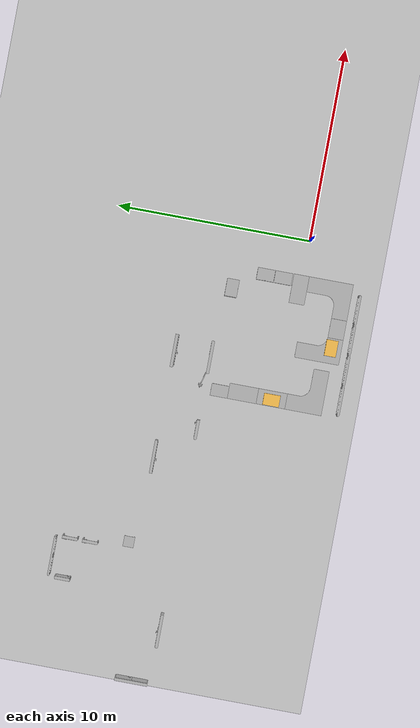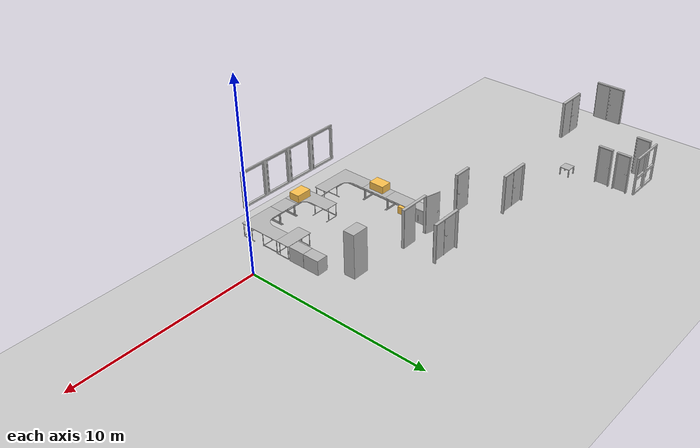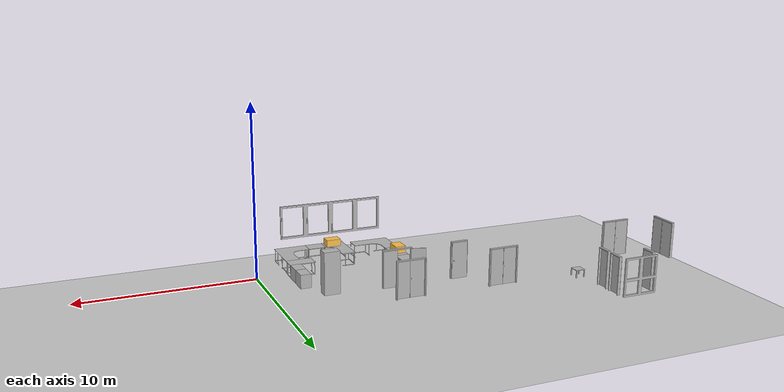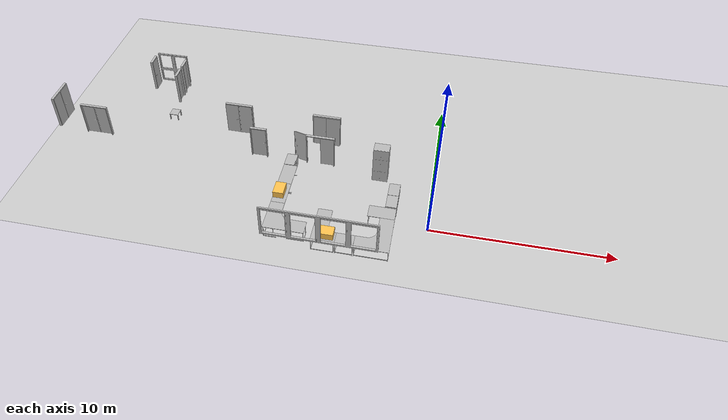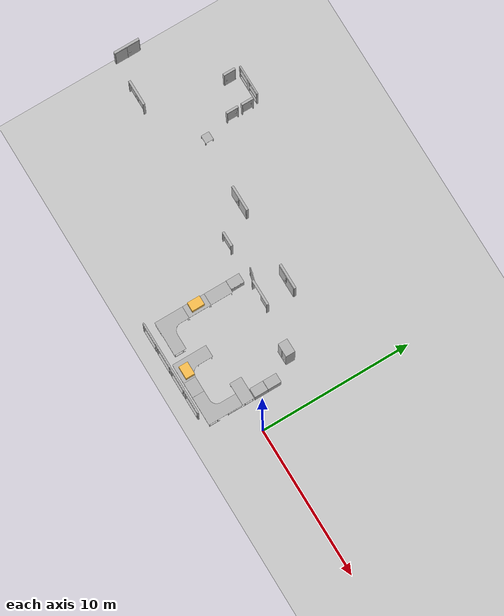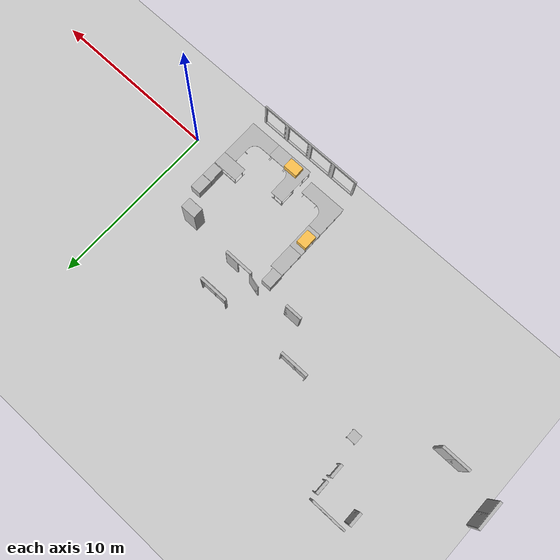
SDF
<sdf version="1.7">
 <world name="default">
  <model name="podlaha">
   <static>1</static>
   <link name="link">
    <collision name="collision">
     <geometry><plane><normal>0 0 1</normal><size>45 21</size></plane></geometry>
     <surface><friction><ode><mu>100</mu><mu2>50</mu2></ode></friction></surface>
    </collision>
    <visual name="visual">
     <cast_shadows>0</cast_shadows>
     <geometry><plane><normal>0 0 1</normal><size>45 21</size></plane></geometry>
     <material>
      <script>
       <uri>model://my_ground_plane/materials/scripts</uri>
       <uri>model://my_ground_plane/materials/textures/</uri>
       <name>MyGroundPlane/Image</name>
      </script>
     </material>
    </visual>
    <velocity_decay><linear>0</linear><angular>0</angular></velocity_decay>
   </link>
   <pose>-1.5 6.5 0 0 -0 0</pose>
  </model>
  <model name="futra_mistnost3">
   <pose>-6.795 3.93 0 0 -0 0</pose>
   <static>1</static>
   <link name="futra_160_collision">
    <collision name="futra_160_collision">
     <geometry><mesh><uri>model://futra_160/meshes/model.dae</uri></mesh></geometry>
    </collision>
    <visual name="futra_160">
     <cast_shadows>0</cast_shadows>
     <geometry><mesh><uri>model://futra_160/meshes/model.dae</uri></mesh></geometry>
     <material>
      <script>
       <uri>model://futra_160/material/scripts</uri>
       <uri>model://futra_160/material/textures</uri>
       <name>futra_160/Diffuse</name>
      </script>
     </material>
    </visual>
   </link>
  </model>
  <model name="dvere_sklikou_mistnost3">
   <pose>-8.00018 4.11255 0 0 -0 2.8828</pose>
   <static>1</static>
   <link name="dvere_80_sklikou_collision">
    <collision name="dvere_80_sklikou_collision">
     <geometry><mesh><uri>model://dvere_80_sklikou/meshes/model.dae</uri></mesh></geometry>
    </collision>
    <visual name="dvere_80_sklikou">
     <cast_shadows>0</cast_shadows>
     <geometry><mesh><uri>model://dvere_80_sklikou/meshes/model.dae</uri></mesh></geometry>
     <material>
      <script>
       <uri>model://dvere_80_sklikou/material/scripts</uri>
       <uri>model://dvere_80_sklikou/material/textures</uri>
       <name>dvere_80_sklikou/Diffuse</name>
      </script>
     </material>
    </visual>
   </link>
  </model>
  <model name="dvere_bezkliky_mistnost3">
   <pose>-6.38 3.99 0 0 -0 0</pose>
   <static>1</static>
   <link name="dvere_80_bezkliky_collision">
    <collision name="dvere_80_bezkliky_collision">
     <geometry><mesh><uri>model://dvere_80_bezkliky/meshes/model.dae</uri></mesh></geometry>
    </collision>
    <visual name="dvere_80_bezkliky">
     <cast_shadows>0</cast_shadows>
     <geometry><mesh><uri>model://dvere_80_bezkliky/meshes/model.dae</uri></mesh></geometry>
     <material>
      <script>
       <uri>model://dvere_80_bezkliky/material/scripts</uri>
       <uri>model://dvere_80_bezkliky/material/textures</uri>
       <name>dvere_80_bezkliky/Diffuse</name>
      </script>
     </material>
    </visual>
   </link>
  </model>
  <model name="skrin_90_low_mistnost3_1">
   <pose>-8.4 3.15 0 0 -0 1.57</pose>
   <static>1</static>
   <link name="skrin_90_low_collision">
    <collision name="skrin_90_low_collision">
     <geometry><mesh><uri>model://skrin_90_low/meshes/model.dae</uri></mesh></geometry>
    </collision>
    <visual name="skrin_90_low">
     <cast_shadows>0</cast_shadows>
     <geometry><mesh><uri>model://skrin_90_low/meshes/model.dae</uri></mesh></geometry>
     <material>
      <script>
       <uri>model://skrin_90_low/material/scripts</uri>
       <uri>model://skrin_90_low/material/textures</uri>
       <name>skrin_90_low/Diffuse</name>
      </script>
     </material>
    </visual>
   </link>
  </model>
  <model name="stul_150_mistnost3_1">
   <pose>-8.31 1.95 0 0 -0 1.57</pose>
   <static>1</static>
   <link name="stul_150_collision">
    <collision name="stul_150_collision">
     <geometry><mesh><uri>model://stul_150/meshes/model.dae</uri></mesh></geometry>
    </collision>
    <visual name="stul_150_mesh">
     <cast_shadows>0</cast_shadows>
     <geometry><mesh><uri>model://stul_150/meshes/model.dae</uri></mesh></geometry>
     <material>
      <script>
       <uri>model://stul_150/material/scripts</uri>
       <uri>model://stul_150/material/textures</uri>
       <name>stul_150/Diffuse</name>
      </script>
     </material>
    </visual>
   </link>
  </model>
  <model name="stul_150_mistnost3_2">
   <pose>-8.31 0.45 0 0 -0 1.57</pose>
   <static>1</static>
   <link name="stul_150_collision">
    <collision name="stul_150_collision">
     <geometry><mesh><uri>model://stul_150/meshes/model.dae</uri></mesh></geometry>
    </collision>
    <visual name="stul_150_mesh">
     <cast_shadows>0</cast_shadows>
     <geometry><mesh><uri>model://stul_150/meshes/model.dae</uri></mesh></geometry>
     <material>
      <script>
       <uri>model://stul_150/material/scripts</uri>
       <uri>model://stul_150/material/textures</uri>
       <name>stul_150/Diffuse</name>
      </script>
     </material>
    </visual>
   </link>
  </model>
  <model name="stul_l_levy_mistnost3_1">
   <pose>-5.35 -1.45 0 0 0 -1.57</pose>
   <static>1</static>
   <link name="stul_l_levy_collision">
    <collision name="stul_l_levy_collision">
     <geometry><mesh><uri>model://stul_l_levy/meshes/model.dae</uri></mesh></geometry>
    </collision>
    <visual name="stul_l_levy_mesh">
     <cast_shadows>0</cast_shadows>
     <geometry><mesh><uri>model://stul_l_levy/meshes/model.dae</uri></mesh></geometry>
     <material>
      <script>
       <uri>model://stul_l_levy/material/scripts</uri>
       <uri>model://stul_l_levy/material/textures</uri>
       <name>stul_l_levy/Diffuse</name>
      </script>
     </material>
    </visual>
   </link>
  </model>
  <model name="stul_v_mistnost3_1">
   <pose>-6.41 -0.9 0 0 -0 3.14</pose>
   <static>1</static>
   <link name="stul_v_collision">
    <collision name="stul_v_collision">
     <geometry><mesh><uri>model://stul_v/meshes/model.dae</uri></mesh></geometry>
    </collision>
    <visual name="stul_v_mesh">
     <cast_shadows>0</cast_shadows>
     <geometry><mesh><uri>model://stul_v/meshes/model.dae</uri></mesh></geometry>
     <material>
      <script>
       <uri>model://stul_v/material/scripts</uri>
       <uri>model://stul_v/material/textures</uri>
       <name>stul_v/Diffuse</name>
      </script>
     </material>
    </visual>
   </link>
  </model>
  <model name="stul_100_mistnost3_1">
   <pose>-4.2 -2.2 0 0 -0 3.14</pose>
   <static>1</static>
   <link name="stul_100_collision">
    <collision name="stul_100_collision">
     <geometry><mesh><uri>model://stul_100/meshes/model.dae</uri></mesh></geometry>
    </collision>
    <visual name="stul_100_mesh">
     <cast_shadows>0</cast_shadows>
     <geometry><mesh><uri>model://stul_100/meshes/model.dae</uri></mesh></geometry>
     <material>
      <script>
       <uri>model://stul_100/material/scripts</uri>
       <uri>model://stul_100/material/textures</uri>
       <name>stul_100/Diffuse</name>
      </script>
     </material>
    </visual>
   </link>
  </model>
  <model name="stul_v_mistnost3_2">
   <pose>-3.1 -0.3 0 0 0 -1.57</pose>
   <static>1</static>
   <link name="stul_v_collision">
    <collision name="stul_v_collision">
     <geometry><mesh><uri>model://stul_v/meshes/model.dae</uri></mesh></geometry>
    </collision>
    <visual name="stul_v_mesh">
     <cast_shadows>0</cast_shadows>
     <geometry><mesh><uri>model://stul_v/meshes/model.dae</uri></mesh></geometry>
     <material>
      <script>
       <uri>model://stul_v/material/scripts</uri>
       <uri>model://stul_v/material/textures</uri>
       <name>stul_v/Diffuse</name>
      </script>
     </material>
    </visual>
   </link>
  </model>
  <model name="stul_150_mistnost3_3">
   <pose>-2.55 0.1 0 0 -0 0</pose>
   <static>1</static>
   <link name="stul_150_collision">
    <collision name="stul_150_collision">
     <geometry><mesh><uri>model://stul_150/meshes/model.dae</uri></mesh></geometry>
    </collision>
    <visual name="stul_150_mesh">
     <cast_shadows>0</cast_shadows>
     <geometry><mesh><uri>model://stul_150/meshes/model.dae</uri></mesh></geometry>
     <material>
      <script>
       <uri>model://stul_150/material/scripts</uri>
       <uri>model://stul_150/material/textures</uri>
       <name>stul_150/Diffuse</name>
      </script>
     </material>
    </visual>
   </link>
  </model>
  <model name="skrin_90_low_mistnost3_2">
   <pose>-2.12 1 0 0 0 -1.57</pose>
   <static>1</static>
   <link name="skrin_90_low_collision">
    <collision name="skrin_90_low_collision">
     <geometry><mesh><uri>model://skrin_90_low/meshes/model.dae</uri></mesh></geometry>
    </collision>
    <visual name="skrin_90_low">
     <cast_shadows>0</cast_shadows>
     <geometry><mesh><uri>model://skrin_90_low/meshes/model.dae</uri></mesh></geometry>
     <material>
      <script>
       <uri>model://skrin_90_low/material/scripts</uri>
       <uri>model://skrin_90_low/material/textures</uri>
       <name>skrin_90_low/Diffuse</name>
      </script>
     </material>
    </visual>
   </link>
  </model>
  <model name="skrin_90_low_mistnost3_3">
   <pose>-2.12 1.91 0 0 0 -1.57</pose>
   <static>1</static>
   <link name="skrin_90_low_collision">
    <collision name="skrin_90_low_collision">
     <geometry><mesh><uri>model://skrin_90_low/meshes/model.dae</uri></mesh></geometry>
    </collision>
    <visual name="skrin_90_low">
     <cast_shadows>0</cast_shadows>
     <geometry><mesh><uri>model://skrin_90_low/meshes/model.dae</uri></mesh></geometry>
     <material>
      <script>
       <uri>model://skrin_90_low/material/scripts</uri>
       <uri>model://skrin_90_low/material/textures</uri>
       <name>skrin_90_low/Diffuse</name>
      </script>
     </material>
    </visual>
   </link>
  </model>
  <model name="skrin_90_mistnost3_1">
   <pose>-3.12 3.5 0 0 -0 0</pose>
   <static>1</static>
   <link name="skrin_90_collision">
    <collision name="skrin_90_collision">
     <geometry><mesh><uri>model://skrin_90/meshes/model.dae</uri></mesh></geometry>
    </collision>
    <visual name="skrin_90">
     <cast_shadows>0</cast_shadows>
     <geometry><mesh><uri>model://skrin_90/meshes/model.dae</uri></mesh></geometry>
     <material>
      <script>
       <uri>model://skrin_90/material/scripts</uri>
       <uri>model://skrin_90/material/textures</uri>
       <name>skrin_90/Diffuse</name>
      </script>
     </material>
    </visual>
   </link>
  </model>
  <model name="okna_mistnost3">
   <pose>-8.57 -3.01 1.18 0 -0 0</pose>
   <static>1</static>
   <link name="okna_collision">
    <collision name="okna_collision">
     <geometry><mesh><uri>model://okna/meshes/model.dae</uri></mesh></geometry>
    </collision>
    <visual name="okna_mesh">
     <cast_shadows>0</cast_shadows>
     <geometry><mesh><uri>model://okna/meshes/model.dae</uri></mesh></geometry>
     <material>
      <script>
       <uri>model://okna/material/scripts</uri>
       <uri>model://okna/material/textures</uri>
       <name>okna/Diffuse</name>
      </script>
     </material>
    </visual>
   </link>
  </model>
  <model name="vchodove_dvere_chodba_2">
   <pose>-19.2306 9.97144 0 0 -0 0</pose>
   <static>1</static>
   <link name="dvere_vchodove_2_collision">
    <collision name="dvere_vchodove_2_collision">
     <geometry><mesh><uri>model://dvere_vchodove_2/meshes/model.dae</uri><scale>0.9 1 1</scale></mesh></geometry>
    </collision>
    <visual name="dvere_vchodove_2_mesh">
     <cast_shadows>0</cast_shadows>
     <geometry><mesh><uri>model://dvere_vchodove_2/meshes/model.dae</uri><scale>0.9 1 1</scale></mesh></geometry>
     <material>
      <script>
       <uri>model://dvere_vchodove_2/material/scripts</uri>
       <uri>model://dvere_vchodove_2/material/textures</uri>
       <name>dvere_vchodove_2/Diffuse</name>
      </script>
     </material>
    </visual>
   </link>
  </model>
  <model name="futra_chodba_1">
   <pose>-21 3.93 0 0 -0 0</pose>
   <static>1</static>
   <link name="futra_160_collision">
    <collision name="futra_160_collision">
     <geometry><mesh><uri>model://futra_160/meshes/model.dae</uri></mesh></geometry>
    </collision>
    <visual name="futra_160">
     <cast_shadows>0</cast_shadows>
     <geometry><mesh><uri>model://futra_160/meshes/model.dae</uri></mesh></geometry>
     <material>
      <script>
       <uri>model://futra_160/material/scripts</uri>
       <uri>model://futra_160/material/textures</uri>
       <name>futra_160/Diffuse</name>
      </script>
     </material>
    </visual>
   </link>
  </model>
  <model name="dvere_sklikou_chodba_1">
   <pose>-21.4 3.99 0 0 -0 0</pose>
   <static>1</static>
   <link name="dvere_80_sklikou_collision">
    <collision name="dvere_80_sklikou_collision">
     <geometry><mesh><uri>model://dvere_80_sklikou/meshes/model.dae</uri></mesh></geometry>
    </collision>
    <visual name="dvere_80_sklikou">
     <cast_shadows>0</cast_shadows>
     <geometry><mesh><uri>model://dvere_80_sklikou/meshes/model.dae</uri></mesh></geometry>
     <material>
      <script>
       <uri>model://dvere_80_sklikou/material/scripts</uri>
       <uri>model://dvere_80_sklikou/material/textures</uri>
       <name>dvere_80_sklikou/Diffuse</name>
      </script>
     </material>
    </visual>
   </link>
  </model>
  <model name="dvere_bezkliky_chodba_1">
   <pose>-20.6 3.99 0 0 -0 0</pose>
   <static>1</static>
   <link name="dvere_80_bezkliky_collision">
    <collision name="dvere_80_bezkliky_collision">
     <geometry><mesh><uri>model://dvere_80_bezkliky/meshes/model.dae</uri></mesh></geometry>
    </collision>
    <visual name="dvere_80_bezkliky">
     <cast_shadows>0</cast_shadows>
     <geometry><mesh><uri>model://dvere_80_bezkliky/meshes/model.dae</uri></mesh></geometry>
     <material>
      <script>
       <uri>model://dvere_80_bezkliky/material/scripts</uri>
       <uri>model://dvere_80_bezkliky/material/textures</uri>
       <name>dvere_80_bezkliky/Diffuse</name>
      </script>
     </material>
    </visual>
   </link>
  </model>
  <model name="futra_chodba_2">
   <pose>-23.795 4.88 0 0 -0 1.57</pose>
   <static>1</static>
   <link name="futra_160_collision">
    <collision name="futra_160_collision">
     <geometry><mesh><uri>model://futra_160/meshes/model.dae</uri></mesh></geometry>
    </collision>
    <visual name="futra_160">
     <cast_shadows>0</cast_shadows>
     <geometry><mesh><uri>model://futra_160/meshes/model.dae</uri></mesh></geometry>
     <material>
      <script>
       <uri>model://futra_160/material/scripts</uri>
       <uri>model://futra_160/material/textures</uri>
       <name>futra_160/Diffuse</name>
      </script>
     </material>
    </visual>
   </link>
  </model>
  <model name="dvere_sklikou_chodba_2">
   <pose>-23.72 5.28 0 0 0 -1.57</pose>
   <static>1</static>
   <link name="dvere_80_sklikou_collision">
    <collision name="dvere_80_sklikou_collision">
     <geometry><mesh><uri>model://dvere_80_sklikou/meshes/model.dae</uri></mesh></geometry>
    </collision>
    <visual name="dvere_80_sklikou">
     <cast_shadows>0</cast_shadows>
     <geometry><mesh><uri>model://dvere_80_sklikou/meshes/model.dae</uri></mesh></geometry>
     <material>
      <script>
       <uri>model://dvere_80_sklikou/material/scripts</uri>
       <uri>model://dvere_80_sklikou/material/textures</uri>
       <name>dvere_80_sklikou/Diffuse</name>
      </script>
     </material>
    </visual>
   </link>
  </model>
  <model name="dvere_bezkliky_chodba_2">
   <pose>-23.72 4.48 0 0 0 -1.57</pose>
   <static>1</static>
   <link name="dvere_80_bezkliky_collision">
    <collision name="dvere_80_bezkliky_collision">
     <geometry><mesh><uri>model://dvere_80_bezkliky/meshes/model.dae</uri></mesh></geometry>
    </collision>
    <visual name="dvere_80_bezkliky">
     <cast_shadows>0</cast_shadows>
     <geometry><mesh><uri>model://dvere_80_bezkliky/meshes/model.dae</uri></mesh></geometry>
     <material>
      <script>
       <uri>model://dvere_80_bezkliky/material/scripts</uri>
       <uri>model://dvere_80_bezkliky/material/textures</uri>
       <name>dvere_80_bezkliky/Diffuse</name>
      </script>
     </material>
    </visual>
   </link>
  </model>
  <model name="futra_chodba_8">
   <pose>-6.795 5.81 0 0 -0 0</pose>
   <static>1</static>
   <link name="futra_160_collision">
    <collision name="futra_160_collision">
     <geometry><mesh><uri>model://futra_160/meshes/model.dae</uri></mesh></geometry>
    </collision>
    <visual name="futra_160">
     <cast_shadows>0</cast_shadows>
     <geometry><mesh><uri>model://futra_160/meshes/model.dae</uri></mesh></geometry>
     <material>
      <script>
       <uri>model://futra_160/material/scripts</uri>
       <uri>model://futra_160/material/textures</uri>
       <name>futra_160/Diffuse</name>
      </script>
     </material>
    </visual>
   </link>
  </model>
  <model name="dvere_sklikou_chodba_8">
   <pose>-7.18 5.72 0 0 -0 0</pose>
   <static>1</static>
   <link name="dvere_80_sklikou_collision">
    <collision name="dvere_80_sklikou_collision">
     <geometry><mesh><uri>model://dvere_80_sklikou/meshes/model.dae</uri></mesh></geometry>
    </collision>
    <visual name="dvere_80_sklikou">
     <cast_shadows>0</cast_shadows>
     <geometry><mesh><uri>model://dvere_80_sklikou/meshes/model.dae</uri></mesh></geometry>
     <material>
      <script>
       <uri>model://dvere_80_sklikou/material/scripts</uri>
       <uri>model://dvere_80_sklikou/material/textures</uri>
       <name>dvere_80_sklikou/Diffuse</name>
      </script>
     </material>
    </visual>
   </link>
  </model>
  <model name="dvere_bezkliky_chodba_8">
   <pose>-6.38 5.72 0 0 -0 0</pose>
   <static>1</static>
   <link name="dvere_80_bezkliky_collision">
    <collision name="dvere_80_bezkliky_collision">
     <geometry><mesh><uri>model://dvere_80_bezkliky/meshes/model.dae</uri></mesh></geometry>
    </collision>
    <visual name="dvere_80_bezkliky">
     <cast_shadows>0</cast_shadows>
     <geometry><mesh><uri>model://dvere_80_bezkliky/meshes/model.dae</uri></mesh></geometry>
     <material>
      <script>
       <uri>model://dvere_80_bezkliky/material/scripts</uri>
       <uri>model://dvere_80_bezkliky/material/textures</uri>
       <name>dvere_80_bezkliky/Diffuse</name>
      </script>
     </material>
    </visual>
   </link>
  </model>
  <model name="stolecek_maly">
   <pose>-17.1467 6.02856 0 0 -0 0</pose>
   <static>1</static>
   <link name="stolecek_maly_collision">
    <collision name="stolecek_maly_collision">
     <geometry><mesh><uri>model://stolecek_maly/meshes/model.dae</uri></mesh></geometry>
    </collision>
    <visual name="stolecek_maly_mesh">
     <cast_shadows>0</cast_shadows>
     <geometry><mesh><uri>model://stolecek_maly/meshes/model.dae</uri></mesh></geometry>
     <material>
      <script>
       <uri>model://stolecek_maly/material/scripts</uri>
       <uri>model://stolecek_maly/material/textures</uri>
       <name>stolecek_maly/Diffuse</name>
      </script>
     </material>
    </visual>
   </link>
  </model>
  <model name="Box_33x15_2">
   <link name="Wall">
    <pose>0 0 0.1985 0 -0 0</pose>
    <inertial>
     <mass>5</mass>
     <inertia><ixx>0.2157</ixx><iyy>0.3597</iyy><izz>0.444</izz><ixy>0</ixy><ixz>0</ixz><iyz>0</iyz></inertia>
    </inertial>
    <collision name="Wall_Collision"><geometry><box><size>0.84 0.6 0.397</size></box></geometry></collision>
    <visual name="Wall_Visual">
     <geometry><box><size>0.84 0.6 0.397</size></box></geometry>
     <material>
      <script><uri>file://media/materials/scripts/gazebo.material</uri><name>Gazebo/Grey</name></script>
      <ambient>1 0.764706 0.305882 1</ambient>
     </material>
    </visual>
   </link>
   <static>1</static>
   <pose>-8.38488 0.45248 0.76 0 -0 1.57</pose>
  </model>
  <model name="Box_15x30_1">
   <link name="Wall">
    <pose>0 0 0.1985 0 -0 0</pose>
    <inertial>
     <mass>5</mass>
     <inertia><ixx>0.3089</ixx><iyy>0.1022</iyy><izz>0.2797</izz><ixy>0</ixy><ixz>0</ixz><iyz>0</iyz></inertia>
    </inertial>
    <collision name="Wall_Collision"><geometry><box><size>0.296 0.764 0.397</size></box></geometry></collision>
    <visual name="Wall_Visual">
     <geometry><box><size>0.296 0.764 0.397</size></box></geometry>
     <material>
      <script><uri>file://media/materials/scripts/gazebo.material</uri><name>Gazebo/Grey</name></script>
      <ambient>1 0.764706 0.305882 1</ambient>
     </material>
    </visual>
   </link>
   <static>1</static>
   <pose>-8.28564 2.21266 0 0 -0 0</pose>
  </model>
  <model name="Box_33x15_3">
   <link name="Wall">
    <pose>0 0 0.1985 0 -0 0</pose>
    <inertial>
     <mass>5</mass>
     <inertia><ixx>0.2157</ixx><iyy>0.3597</iyy><izz>0.444</izz><ixy>0</ixy><ixz>0</ixz><iyz>0</iyz></inertia>
    </inertial>
    <collision name="Wall_Collision"><geometry><box><size>0.84 0.6 0.397</size></box></geometry></collision>
    <visual name="Wall_Visual">
     <geometry><box><size>0.84 0.6 0.397</size></box></geometry>
     <material>
      <script><uri>file://media/materials/scripts/gazebo.material</uri><name>Gazebo/Grey</name></script>
      <ambient>1 0.764706 0.305882 1</ambient>
     </material>
    </visual>
   </link>
   <static>1</static>
   <pose>-5.21693 -2.06648 0.76 0 -0 0</pose>
  </model>
  <model name="futra_90">
   <pose>-10.5557 3.94044 0 0 -0 0</pose>
   <static>1</static>
   <link name="futra_90_collision">
    <collision name="futra_90_collision">
     <geometry><mesh><uri>model://futra_90/meshes/model.dae</uri></mesh></geometry>
    </collision>
    <visual name="futra_90">
     <cast_shadows>0</cast_shadows>
     <geometry><mesh><uri>model://futra_90/meshes/model.dae</uri></mesh></geometry>
     <material>
      <script>
       <uri>model://futra_90/material/scripts</uri>
       <uri>model://futra_90/material/textures</uri>
       <name>futra_90/Diffuse</name>
      </script>
     </material>
    </visual>
   </link>
  </model>
  <model name="dvere_90">
   <pose>-10.5782 4.00094 0 0 -0 0</pose>
   <static>1</static>
   <link name="dvere_90_collision">
    <collision name="dvere_90_collision">
     <geometry><mesh><uri>model://dvere_90/meshes/model.dae</uri></mesh></geometry>
    </collision>
    <visual name="dvere_90">
     <cast_shadows>0</cast_shadows>
     <geometry><mesh><uri>model://dvere_90/meshes/model.dae</uri></mesh></geometry>
     <material>
      <script>
       <uri>model://dvere_90/material/scripts</uri>
       <uri>model://dvere_90/material/textures</uri>
       <name>dvere_90/Diffuse</name>
      </script>
     </material>
    </visual>
   </link>
  </model>
  <model name="futra_160">
   <pose>-12.3037 5.85094 0 0 -0 0</pose>
   <static>1</static>
   <link name="futra_160_collision">
    <collision name="futra_160_collision">
     <geometry><mesh><uri>model://futra_160/meshes/model.dae</uri></mesh></geometry>
    </collision>
    <visual name="futra_160">
     <cast_shadows>0</cast_shadows>
     <geometry><mesh><uri>model://futra_160/meshes/model.dae</uri></mesh></geometry>
     <material>
      <script>
       <uri>model://futra_160/material/scripts</uri>
       <uri>model://futra_160/material/textures</uri>
       <name>futra_160/Diffuse</name>
      </script>
     </material>
    </visual>
   </link>
  </model>
  <model name="dvere_80_bezkliky">
   <pose>-11.922 5.79127 0 0 -0 0</pose>
   <static>1</static>
   <link name="dvere_80_bezkliky_collision">
    <collision name="dvere_80_bezkliky_collision">
     <geometry><mesh><uri>model://dvere_80_bezkliky/meshes/model.dae</uri></mesh></geometry>
    </collision>
    <visual name="dvere_80_bezkliky">
     <cast_shadows>0</cast_shadows>
     <geometry><mesh><uri>model://dvere_80_bezkliky/meshes/model.dae</uri></mesh></geometry>
     <material>
      <script>
       <uri>model://dvere_80_bezkliky/material/scripts</uri>
       <uri>model://dvere_80_bezkliky/material/textures</uri>
       <name>dvere_80_bezkliky/Diffuse</name>
      </script>
     </material>
    </visual>
   </link>
  </model>
  <model name="dvere_80_sklikou">
   <pose>-12.7463 5.7931 0 0 -0 0</pose>
   <static>1</static>
   <link name="dvere_80_sklikou_collision">
    <collision name="dvere_80_sklikou_collision">
     <geometry><mesh><uri>model://dvere_80_sklikou/meshes/model.dae</uri></mesh></geometry>
    </collision>
    <visual name="dvere_80_sklikou">
     <cast_shadows>0</cast_shadows>
     <geometry><mesh><uri>model://dvere_80_sklikou/meshes/model.dae</uri></mesh></geometry>
     <material>
      <script>
       <uri>model://dvere_80_sklikou/material/scripts</uri>
       <uri>model://dvere_80_sklikou/material/textures</uri>
       <name>dvere_80_sklikou/Diffuse</name>
      </script>
     </material>
    </visual>
   </link>
  </model>
  <model name="futra_70">
   <pose>-17.1693 8.23554 0 0 -0 1.57</pose>
   <static>1</static>
   <link name="futra_70_collision">
    <collision name="futra_70_collision">
     <geometry><mesh><uri>model://futra_70/meshes/model.dae</uri></mesh></geometry>
    </collision>
    <visual name="futra_70">
     <cast_shadows>0</cast_shadows>
     <geometry><mesh><uri>model://futra_70/meshes/model.dae</uri></mesh></geometry>
     <material>
      <script>
       <uri>model://futra_70/material/scripts</uri>
       <uri>model://futra_70/material/textures</uri>
       <name>futra_70/Diffuse</name>
      </script>
     </material>
    </visual>
   </link>
  </model>
  <model name="futra_70_0">
   <pose>-17.1564 9.27361 0 0 -0 1.57</pose>
   <static>1</static>
   <link name="futra_70_collision">
    <collision name="futra_70_collision">
     <geometry><mesh><uri>model://futra_70/meshes/model.dae</uri></mesh></geometry>
    </collision>
    <visual name="futra_70">
     <cast_shadows>0</cast_shadows>
     <geometry><mesh><uri>model://futra_70/meshes/model.dae</uri></mesh></geometry>
     <material>
      <script>
       <uri>model://futra_70/material/scripts</uri>
       <uri>model://futra_70/material/textures</uri>
       <name>futra_70/Diffuse</name>
      </script>
     </material>
    </visual>
   </link>
  </model>
  <model name="futra_70_1">
   <pose>-19.2667 9.29175 0 0 -0 1.57</pose>
   <static>1</static>
   <link name="futra_70_collision">
    <collision name="futra_70_collision">
     <geometry><mesh><uri>model://futra_70/meshes/model.dae</uri></mesh></geometry>
    </collision>
    <visual name="futra_70">
     <cast_shadows>0</cast_shadows>
     <geometry><mesh><uri>model://futra_70/meshes/model.dae</uri></mesh></geometry>
     <material>
      <script>
       <uri>model://futra_70/material/scripts</uri>
       <uri>model://futra_70/material/textures</uri>
       <name>futra_70/Diffuse</name>
      </script>
     </material>
    </visual>
   </link>
  </model>
  <model name="dvere_70">
   <pose>-19.2101 9.30116 0 0 0 -1.57</pose>
   <static>1</static>
   <link name="dvere_70_collision">
    <collision name="dvere_70_collision">
     <geometry><mesh><uri>model://dvere_70/meshes/model.dae</uri></mesh></geometry>
    </collision>
    <visual name="dvere_70">
     <cast_shadows>0</cast_shadows>
     <geometry><mesh><uri>model://dvere_70/meshes/model.dae</uri></mesh></geometry>
     <material>
      <script>
       <uri>model://dvere_70/material/scripts</uri>
       <uri>model://dvere_70/material/textures</uri>
       <name>dvere_70/Diffuse</name>
      </script>
     </material>
    </visual>
   </link>
  </model>
  <model name="dvere_70_0">
   <pose>-17.2233 9.26728 0 0 -0 1.57</pose>
   <static>1</static>
   <link name="dvere_70_collision">
    <collision name="dvere_70_collision">
     <geometry><mesh><uri>model://dvere_70/meshes/model.dae</uri></mesh></geometry>
    </collision>
    <visual name="dvere_70">
     <cast_shadows>0</cast_shadows>
     <geometry><mesh><uri>model://dvere_70/meshes/model.dae</uri></mesh></geometry>
     <material>
      <script>
       <uri>model://dvere_70/material/scripts</uri>
       <uri>model://dvere_70/material/textures</uri>
       <name>dvere_70/Diffuse</name>
      </script>
     </material>
    </visual>
   </link>
  </model>
  <model name="dvere_70_1">
   <pose>-17.2273 8.23201 0 0 -0 1.57</pose>
   <static>1</static>
   <link name="dvere_70_collision">
    <collision name="dvere_70_collision">
     <geometry><mesh><uri>model://dvere_70/meshes/model.dae</uri></mesh></geometry>
    </collision>
    <visual name="dvere_70">
     <cast_shadows>0</cast_shadows>
     <geometry><mesh><uri>model://dvere_70/meshes/model.dae</uri></mesh></geometry>
     <material>
      <script>
       <uri>model://dvere_70/material/scripts</uri>
       <uri>model://dvere_70/material/textures</uri>
       <name>dvere_70/Diffuse</name>
      </script>
     </material>
    </visual>
   </link>
  </model>
 </world>
</sdf>
